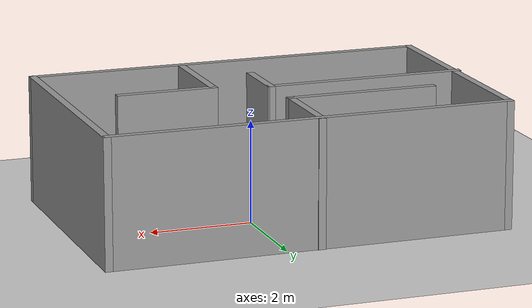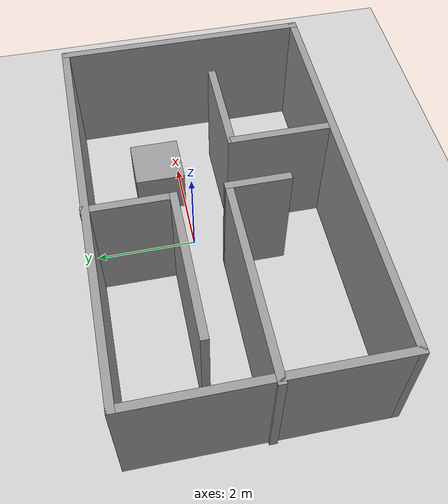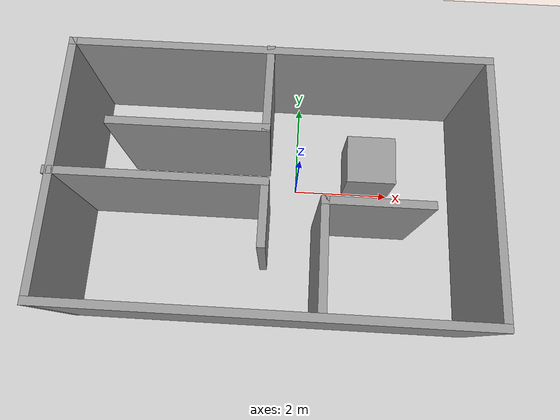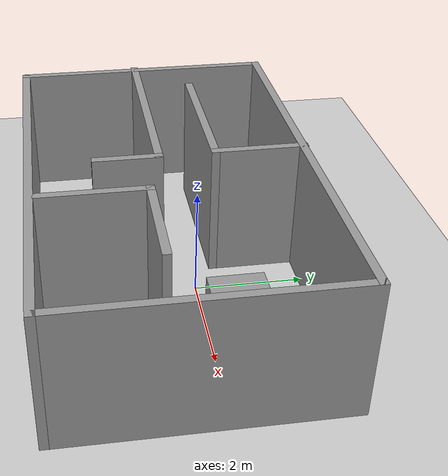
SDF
<sdf version="1.7">
 <world name="default">
  <light name="sun" type="directional">
   <pose>0 0 10 0 -0 0</pose>
   <diffuse>0.8 0.8 0.8 1</diffuse>
   <specular>0.2 0.2 0.2 1</specular>
   <attenuation>
    <range>1000</range>
    <constant>0.9</constant>
    <linear>0.01</linear>
    <quadratic>0.001</quadratic>
   </attenuation>
   <direction>-0.5 0.1 -0.9</direction>
   <spot><inner_angle>0</inner_angle><outer_angle>0</outer_angle><falloff>0</falloff></spot>
  </light>
  <model name="ground_plane">
   <static>1</static>
   <link name="link">
    <collision name="collision">
     <geometry><plane><normal>0 0 1</normal><size>100 100</size></plane></geometry>
     <surface><friction><ode><mu>100</mu><mu2>50</mu2></ode></friction></surface>
    </collision>
    <visual name="visual">
     <cast_shadows>0</cast_shadows>
     <geometry><plane><normal>0 0 1</normal><size>100 100</size></plane></geometry>
     <material>
      <script><uri>file://media/materials/scripts/gazebo.material</uri><name>Gazebo/Grey</name></script>
     </material>
    </visual>
   </link>
  </model>
  <gravity>0 0 -9.8</gravity>
  <magnetic_field>6e-06 2.3e-05 -4.2e-05</magnetic_field>
  <atmosphere type="adiabatic"/>
  <physics type="ode">
   <max_step_size>0.001</max_step_size>
   <real_time_factor>1</real_time_factor>
   <real_time_update_rate>1000</real_time_update_rate>
  </physics>
  <scene><ambient>0.4 0.4 0.4 1</ambient><background>0.7 0.7 0.7 1</background><shadows>1</shadows></scene>
  <audio><device>default</device></audio>
  <spherical_coordinates>
   <surface_model>EARTH_WGS84</surface_model>
   <latitude_deg>0</latitude_deg>
   <longitude_deg>0</longitude_deg>
   <elevation>0</elevation>
   <heading_deg>0</heading_deg>
  </spherical_coordinates>
  <model name="room">
   <pose>0.392605 -0.408272 0 0 -0 0</pose>
   <link name="Wall_1">
    <collision name="Wall_1_Collision">
     <geometry><box><size>8 0.15 2.5</size></box></geometry>
     <pose>0 0 1.25 0 -0 0</pose>
    </collision>
    <visual name="Wall_1_Visual">
     <pose>0 0 1.25 0 -0 0</pose>
     <geometry><box><size>8 0.15 2.5</size></box></geometry>
     <material>
      <script><uri>file://media/materials/scripts/gazebo.material</uri><name>Gazebo/Grey</name></script>
      <ambient>1 1 1 1</ambient>
     </material>
     <meta><layer>0</layer></meta>
    </visual>
    <pose>-0.877135 2.41613 0 0 -0 0</pose>
   </link>
   <link name="Wall_10">
    <collision name="Wall_10_Collision">
     <geometry><box><size>1.75 0.15 2.5</size></box></geometry>
     <pose>0 0 1.25 0 -0 0</pose>
    </collision>
    <visual name="Wall_10_Visual">
     <pose>0 0 1.25 0 -0 0</pose>
     <geometry><box><size>1.75 0.15 2.5</size></box></geometry>
     <material>
      <script><uri>file://media/materials/scripts/gazebo.material</uri><name>Gazebo/Grey</name></script>
      <ambient>1 1 1 1</ambient>
     </material>
     <meta><layer>0</layer></meta>
    </visual>
    <pose>-1.04264 1.63387 0 0 -0 -1.5708</pose>
   </link>
   <link name="Wall_11">
    <collision name="Wall_11_Collision">
     <geometry><box><size>3 0.15 2.5</size></box></geometry>
     <pose>0 0 1.25 0 -0 0</pose>
    </collision>
    <visual name="Wall_11_Visual">
     <pose>0 0 1.25 0 -0 0</pose>
     <geometry><box><size>3 0.15 2.5</size></box></geometry>
     <material>
      <script><uri>file://media/materials/scripts/gazebo.material</uri><name>Gazebo/Grey</name></script>
      <ambient>1 1 1 1</ambient>
     </material>
     <meta><layer>0</layer></meta>
    </visual>
    <pose>-2.46764 0.833867 0 0 -0 3.14159</pose>
   </link>
   <link name="Wall_13">
    <collision name="Wall_13_Collision">
     <geometry><box><size>2 0.15 2.5</size></box></geometry>
     <pose>0 0 1.25 0 -0 0</pose>
    </collision>
    <visual name="Wall_13_Visual">
     <pose>0 0 1.25 0 -0 0</pose>
     <geometry><box><size>2 0.15 2.5</size></box></geometry>
     <material>
      <script><uri>file://media/materials/scripts/gazebo.material</uri><name>Gazebo/Grey</name></script>
      <ambient>1 1 1 1</ambient>
     </material>
     <meta><layer>0</layer></meta>
    </visual>
    <pose>0.056835 -1.37597 0 0 -0 1.5708</pose>
   </link>
   <link name="Wall_14">
    <collision name="Wall_14_Collision">
     <geometry><box><size>2 0.15 2.5</size></box></geometry>
     <pose>0 0 1.25 0 -0 0</pose>
    </collision>
    <visual name="Wall_14_Visual">
     <pose>0 0 1.25 0 -0 0</pose>
     <geometry><box><size>2 0.15 2.5</size></box></geometry>
     <material>
      <script><uri>file://media/materials/scripts/gazebo.material</uri><name>Gazebo/Grey</name></script>
      <ambient>1 1 1 1</ambient>
     </material>
     <meta><layer>0</layer></meta>
    </visual>
    <pose>0.981835 -0.450969 0 0 -0 0</pose>
   </link>
   <link name="Wall_3">
    <collision name="Wall_3_Collision">
     <geometry><box><size>5 0.15 2.5</size></box></geometry>
     <pose>0 0 1.25 0 -0 0</pose>
    </collision>
    <visual name="Wall_3_Visual">
     <pose>0 0 1.25 0 -0 0</pose>
     <geometry><box><size>5 0.15 2.5</size></box></geometry>
     <material>
      <script><uri>file://media/materials/scripts/gazebo.material</uri><name>Gazebo/Grey</name></script>
      <ambient>1 1 1 1</ambient>
     </material>
     <meta><layer>0</layer></meta>
    </visual>
    <pose>3.04786 -0.008867 0 0 -0 -1.5708</pose>
   </link>
   <link name="Wall_4">
    <collision name="Wall_4_Collision">
     <geometry><box><size>8 0.15 2.5</size></box></geometry>
     <pose>0 0 1.25 0 -0 0</pose>
    </collision>
    <visual name="Wall_4_Visual">
     <pose>0 0 1.25 0 -0 0</pose>
     <geometry><box><size>8 0.15 2.5</size></box></geometry>
     <material>
      <script><uri>file://media/materials/scripts/gazebo.material</uri><name>Gazebo/Grey</name></script>
      <ambient>1 1 1 1</ambient>
     </material>
     <meta><layer>0</layer></meta>
    </visual>
    <pose>-0.877135 -2.43387 0 0 -0 3.14159</pose>
   </link>
   <link name="Wall_5">
    <collision name="Wall_5_Collision">
     <geometry><box><size>5 0.15 2.5</size></box></geometry>
     <pose>0 0 1.25 0 -0 0</pose>
    </collision>
    <visual name="Wall_5_Visual">
     <pose>0 0 1.25 0 -0 0</pose>
     <geometry><box><size>5 0.15 2.5</size></box></geometry>
     <material>
      <script><uri>file://media/materials/scripts/gazebo.material</uri><name>Gazebo/Grey</name></script>
      <ambient>1 1 1 1</ambient>
     </material>
     <meta><layer>0</layer></meta>
    </visual>
    <pose>-4.80213 -0.008867 0 0 -0 1.5708</pose>
   </link>
   <link name="Wall_7">
    <collision name="Wall_7_Collision">
     <geometry><box><size>4 0.15 2.5</size></box></geometry>
     <pose>0 0 1.25 0 -0 0</pose>
    </collision>
    <visual name="Wall_7_Visual">
     <pose>0 0 1.25 0 -0 0</pose>
     <geometry><box><size>4 0.15 2.5</size></box></geometry>
     <material>
      <script><uri>file://media/materials/scripts/gazebo.material</uri><name>Gazebo/Grey</name></script>
      <ambient>1 1 1 1</ambient>
     </material>
     <meta><layer>0</layer></meta>
    </visual>
    <pose>-2.93034 -0.172953 0 0 -0 0</pose>
   </link>
   <link name="Wall_8">
    <collision name="Wall_8_Collision">
     <geometry><box><size>1.25 0.15 2.5</size></box></geometry>
     <pose>0 0 1.25 0 -0 0</pose>
    </collision>
    <visual name="Wall_8_Visual">
     <pose>0 0 1.25 0 -0 0</pose>
     <geometry><box><size>1.25 0.15 2.5</size></box></geometry>
     <material>
      <script><uri>file://media/materials/scripts/gazebo.material</uri><name>Gazebo/Grey</name></script>
      <ambient>1 1 1 1</ambient>
     </material>
     <meta><layer>0</layer></meta>
    </visual>
    <pose>-1.00534 -0.722953 0 0 -0 -1.5708</pose>
   </link>
   <static>1</static>
  </model>
  <model name="unit_box">
   <pose>1.50983 0.493664 0.5 0 -0 0</pose>
   <link name="link">
    <inertial>
     <mass>1</mass>
     <inertia>
      <ixx>0.166667</ixx>
      <ixy>0</ixy>
      <ixz>0</ixz>
      <iyy>0.166667</iyy>
      <iyz>0</iyz>
      <izz>0.166667</izz>
     </inertia>
    </inertial>
    <collision name="collision"><geometry><box><size>1 1 1</size></box></geometry></collision>
    <visual name="visual">
     <geometry><box><size>1 1 1</size></box></geometry>
     <material>
      <script><name>Gazebo/Grey</name><uri>file://media/materials/scripts/gazebo.material</uri></script>
     </material>
    </visual>
   </link>
  </model>
 </world>
</sdf>
